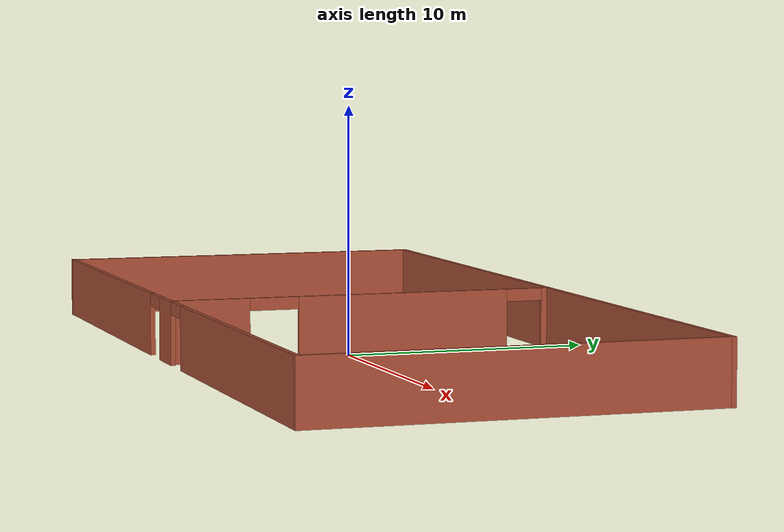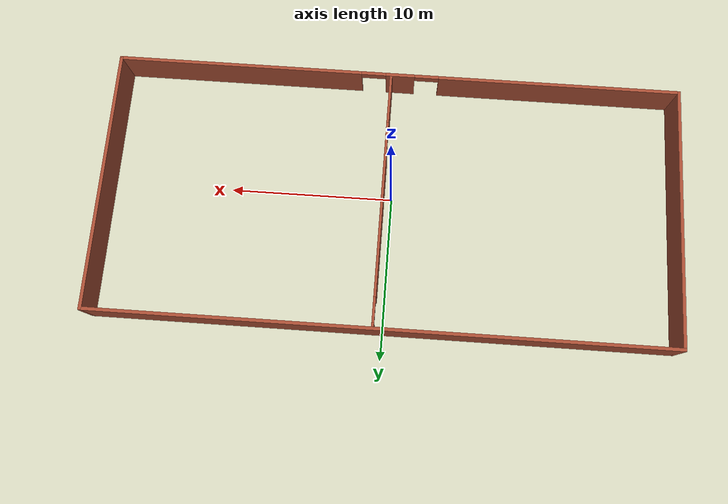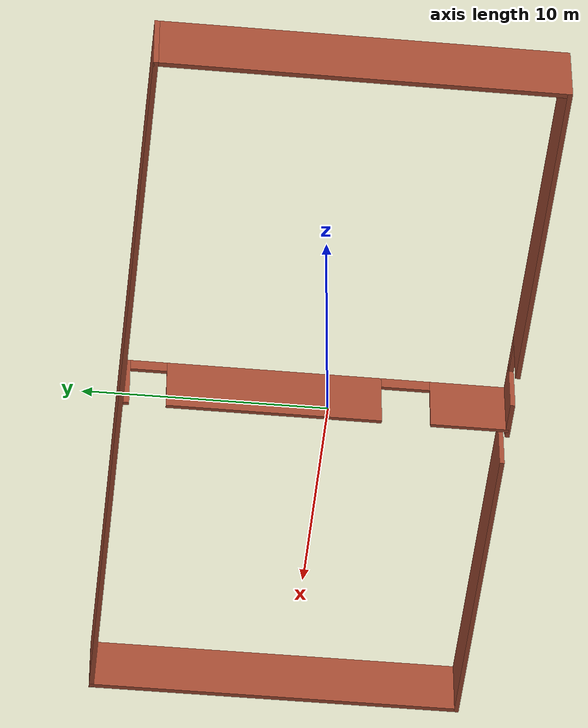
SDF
<?xml version='1.0'?>
<sdf version='1.7'>
  <model name='warehouse'>
    <pose>0.042999 0.469 0 0 -0 0</pose>
    <link name='Wall_2'>
      <collision name='Wall_2_Collision'>
        <geometry>
          <box>
            <size>35.0504 0.2 2.5</size>
          </box>
        </geometry>
        <pose>0 0 1.25 0 -0 0</pose>
      </collision>
      <visual name='Wall_2_Visual'>
        <pose>0 0 1.25 0 -0 0</pose>
        <geometry>
          <box>
            <size>35.0504 0.2 2.5</size>
          </box>
        </geometry>
        <material>
          <script>
            <uri>file://media/materials/scripts/gazebo.material</uri>
            <name>Gazebo/Bricks</name>
          </script>
          <ambient>1 1 1 1</ambient>
        </material>
        <meta>
          <layer>0</layer>
        </meta>
      </visual>
      <pose>1e-06 7.925 0 0 -0 0</pose>
    </link>
    <link name='Wall_3'>
      <collision name='Wall_3_Collision'>
        <geometry>
          <box>
            <size>16.0502 0.2 2.5</size>
          </box>
        </geometry>
        <pose>0 0 1.25 0 -0 0</pose>
      </collision>
      <visual name='Wall_3_Visual'>
        <pose>0 0 1.25 0 -0 0</pose>
        <geometry>
          <box>
            <size>16.0502 0.2 2.5</size>
          </box>
        </geometry>
        <material>
          <script>
            <uri>file://media/materials/scripts/gazebo.material</uri>
            <name>Gazebo/Bricks</name>
          </script>
          <ambient>1 1 1 1</ambient>
        </material>
        <meta>
          <layer>0</layer>
        </meta>
      </visual>
      <pose>17.425 0 0 0 -0 -1.5708</pose>
    </link>
    <link name='Wall_4'>
      <pose>1e-06 -7.925 0 0 -0 3.14159</pose>
      <visual name='Wall_4_Visual_0'>
        <pose>-9.91729 0 1.25 0 -0 0</pose>
        <geometry>
          <box>
            <size>15.215 0.2 2.5</size>
          </box>
        </geometry>
        <material>
          <script>
            <uri>file://media/materials/scripts/gazebo.material</uri>
            <name>Gazebo/Bricks</name>
          </script>
          <ambient>1 1 1 1</ambient>
        </material>
        <meta>
          <layer>0</layer>
        </meta>
      </visual>
      <collision name='Wall_4_Collision_0'>
        <geometry>
          <box>
            <size>15.215 0.2 2.5</size>
          </box>
        </geometry>
        <pose>-9.91729 0 1.25 0 -0 0</pose>
      </collision>
      <visual name='Wall_4_Visual_1'>
        <pose>0.093025 0 1.25 0 -0 0</pose>
        <geometry>
          <box>
            <size>1.80562 0.2 2.5</size>
          </box>
        </geometry>
        <material>
          <script>
            <uri>file://media/materials/scripts/gazebo.material</uri>
            <name>Gazebo/Bricks</name>
          </script>
          <ambient>1 1 1 1</ambient>
        </material>
        <meta>
          <layer>0</layer>
        </meta>
      </visual>
      <collision name='Wall_4_Collision_1'>
        <geometry>
          <box>
            <size>1.80562 0.2 2.5</size>
          </box>
        </geometry>
        <pose>0.093025 0 1.25 0 -0 0</pose>
      </collision>
      <visual name='Wall_4_Visual_2'>
        <pose>10.0103 0 1.25 0 -0 0</pose>
        <geometry>
          <box>
            <size>15.029 0.2 2.5</size>
          </box>
        </geometry>
        <material>
          <script>
            <uri>file://media/materials/scripts/gazebo.material</uri>
            <name>Gazebo/Bricks</name>
          </script>
          <ambient>1 1 1 1</ambient>
        </material>
        <meta>
          <layer>0</layer>
        </meta>
      </visual>
      <collision name='Wall_4_Collision_2'>
        <geometry>
          <box>
            <size>15.029 0.2 2.5</size>
          </box>
        </geometry>
        <pose>10.0103 0 1.25 0 -0 0</pose>
      </collision>
      <visual name='Wall_4_Visual_3'>
        <pose>-1.55979 0 2.25 0 -0 0</pose>
        <geometry>
          <box>
            <size>1.5 0.2 0.5</size>
          </box>
        </geometry>
        <material>
          <script>
            <uri>file://media/materials/scripts/gazebo.material</uri>
            <name>Gazebo/Bricks</name>
          </script>
          <ambient>1 1 1 1</ambient>
        </material>
        <meta>
          <layer>0</layer>
        </meta>
      </visual>
      <collision name='Wall_4_Collision_3'>
        <geometry>
          <box>
            <size>1.5 0.2 0.5</size>
          </box>
        </geometry>
        <pose>-1.55979 0 2.25 0 -0 0</pose>
      </collision>
      <visual name='Wall_4_Visual_4'>
        <pose>1.74584 0 2.25 0 -0 0</pose>
        <geometry>
          <box>
            <size>1.5 0.2 0.5</size>
          </box>
        </geometry>
        <material>
          <script>
            <uri>file://media/materials/scripts/gazebo.material</uri>
            <name>Gazebo/Bricks</name>
          </script>
          <ambient>1 1 1 1</ambient>
        </material>
        <meta>
          <layer>0</layer>
        </meta>
      </visual>
      <collision name='Wall_4_Collision_4'>
        <geometry>
          <box>
            <size>1.5 0.2 0.5</size>
          </box>
        </geometry>
        <pose>1.74584 0 2.25 0 -0 0</pose>
      </collision>
    </link>
    <link name='Wall_5'>
      <collision name='Wall_5_Collision'>
        <geometry>
          <box>
            <size>16.05 0.2 2.5</size>
          </box>
        </geometry>
        <pose>0 0 1.25 0 -0 0</pose>
      </collision>
      <visual name='Wall_5_Visual'>
        <pose>0 0 1.25 0 -0 0</pose>
        <geometry>
          <box>
            <size>16.05 0.2 2.5</size>
          </box>
        </geometry>
        <material>
          <script>
            <uri>file://media/materials/scripts/gazebo.material</uri>
            <name>Gazebo/Bricks</name>
          </script>
          <ambient>1 1 1 1</ambient>
        </material>
        <meta>
          <layer>0</layer>
        </meta>
      </visual>
      <pose>-17.425 0 0 0 -0 1.5708</pose>
    </link>
    <link name='Wall_8'>
      <pose>0.464252 -0.022121 0 0 -0 -1.5708</pose>
      <visual name='Wall_8_Visual_0'>
        <pose>-7.80252 0 1.25 0 -0 0</pose>
        <geometry>
          <box>
            <size>0.394954 0.15 2.5</size>
          </box>
        </geometry>
        <material>
          <script>
            <uri>file://media/materials/scripts/gazebo.material</uri>
            <name>Gazebo/Bricks</name>
          </script>
          <ambient>1 1 1 1</ambient>
        </material>
        <meta>
          <layer>0</layer>
        </meta>
      </visual>
      <collision name='Wall_8_Collision_0'>
        <geometry>
          <box>
            <size>0.394954 0.15 2.5</size>
          </box>
        </geometry>
        <pose>-7.80252 0 1.25 0 -0 0</pose>
      </collision>
      <visual name='Wall_8_Visual_1'>
        <pose>-1.69513 0 1.25 0 -0 0</pose>
        <geometry>
          <box>
            <size>8.81983 0.15 2.5</size>
          </box>
        </geometry>
        <material>
          <script>
            <uri>file://media/materials/scripts/gazebo.material</uri>
            <name>Gazebo/Bricks</name>
          </script>
          <ambient>1 1 1 1</ambient>
        </material>
        <meta>
          <layer>0</layer>
        </meta>
      </visual>
      <collision name='Wall_8_Collision_1'>
        <geometry>
          <box>
            <size>8.81983 0.15 2.5</size>
          </box>
        </geometry>
        <pose>-1.69513 0 1.25 0 -0 0</pose>
      </collision>
      <visual name='Wall_8_Visual_2'>
        <pose>6.35739 0 1.25 0 -0 0</pose>
        <geometry>
          <box>
            <size>3.28522 0.15 2.5</size>
          </box>
        </geometry>
        <material>
          <script>
            <uri>file://media/materials/scripts/gazebo.material</uri>
            <name>Gazebo/Bricks</name>
          </script>
          <ambient>1 1 1 1</ambient>
        </material>
        <meta>
          <layer>0</layer>
        </meta>
      </visual>
      <collision name='Wall_8_Collision_2'>
        <geometry>
          <box>
            <size>3.28522 0.15 2.5</size>
          </box>
        </geometry>
        <pose>6.35739 0 1.25 0 -0 0</pose>
      </collision>
      <visual name='Wall_8_Visual_3'>
        <pose>-6.85505 0 2.25 0 -0 0</pose>
        <geometry>
          <box>
            <size>1.5 0.15 0.5</size>
          </box>
        </geometry>
        <material>
          <script>
            <uri>file://media/materials/scripts/gazebo.material</uri>
            <name>Gazebo/Bricks</name>
          </script>
          <ambient>1 1 1 1</ambient>
        </material>
        <meta>
          <layer>0</layer>
        </meta>
      </visual>
      <collision name='Wall_8_Collision_3'>
        <geometry>
          <box>
            <size>1.5 0.15 0.5</size>
          </box>
        </geometry>
        <pose>-6.85505 0 2.25 0 -0 0</pose>
      </collision>
      <visual name='Wall_8_Visual_4'>
        <pose>3.71478 0 2.25 0 -0 0</pose>
        <geometry>
          <box>
            <size>2 0.15 0.5</size>
          </box>
        </geometry>
        <material>
          <script>
            <uri>file://media/materials/scripts/gazebo.material</uri>
            <name>Gazebo/Bricks</name>
          </script>
          <ambient>1 1 1 1</ambient>
        </material>
        <meta>
          <layer>0</layer>
        </meta>
      </visual>
      <collision name='Wall_8_Collision_4'>
        <geometry>
          <box>
            <size>2 0.15 0.5</size>
          </box>
        </geometry>
        <pose>3.71478 0 2.25 0 -0 0</pose>
      </collision>
    </link>
    <static>1</static>
  </model>
</sdf>
